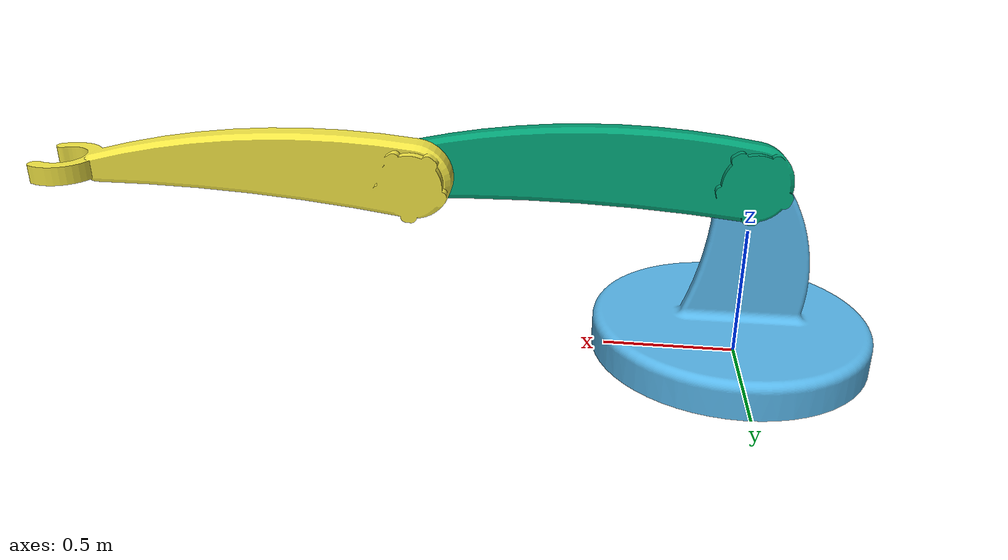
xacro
<?xml version="1.0"?>
<robot name="practice_bot" xmlns:xacro="http://www.ros.org/wiki/xacro">

    <xacro:property name="PI" value="3.14259"/>

    <link name="world"/>

    <joint name="virtual_joint" type="fixed">
        <parent link="world"/>
        <child link="base_link"/>
        <origin rpy="0 0 0" xyz="0 0 0"/>
    </joint>

    <link name="base_link">
        <visual>
            <origin rpy="${PI/2} 0.0 0.0" xyz="-0.5 0.5 0.0"/>
            <geometry>
                <mesh filename="package://practice_bot_description/meshes/base_link.STL" scale="0.007 0.007 0.007"/>
            </geometry>
        </visual>
    </link>

    <!-- First Arm Joint: Defines the actual pivot coordinate frame in RViz -->
    <link name="robot_first_arm">
        <visual>
            <!-- Set to zero so the mesh perfectly aligns with the joint frame above -->
            <origin rpy="${PI} 0 0" xyz="-0.12 0.21 0.2"/>
            <geometry>
                <mesh filename="package://practice_bot_description/meshes/robot_first_arm.STL" scale="0.007 0.007 0.007"/>
            </geometry>
        </visual>
    </link>

    <joint name="robot_first_arm_joint" type="revolute">
        <parent link="base_link"/>
        <child link="robot_first_arm"/>
        <origin rpy="0 0 0" xyz="0 -0.05 0.7"/>
        <axis xyz="0 1 0"/>
        <limit effort="100" lower="-1.57" upper="1.57" velocity="1.0"/>
    </joint>

      <link name="robot_second_arm">
        <visual>
            <!-- Set to zero to prevent the 'double-move' issue -->
            <origin rpy="${PI} 0 0" xyz="-0.153 0.24 0.18"/>
            <geometry>
                <mesh filename="package://practice_bot_description/meshes/robot_second_arm.STL" scale="0.007 0.007 0.007"/>
            </geometry>
        </visual>
    </link>

    <!-- Second Arm Joint: Defines the actual pivot coordinate frame in RViz -->
    <joint name="robot_second_arm_joint" type="revolute">
        <parent link="robot_first_arm"/>
        <child link="robot_second_arm"/>
        <origin rpy="0 0 0" xyz="1.23 0.14 0"/>
        <axis xyz="0 1 0"/>
        <limit effort="100" lower="-1.57" upper="1.57" velocity="1.0"/>
    </joint>

</robot>
